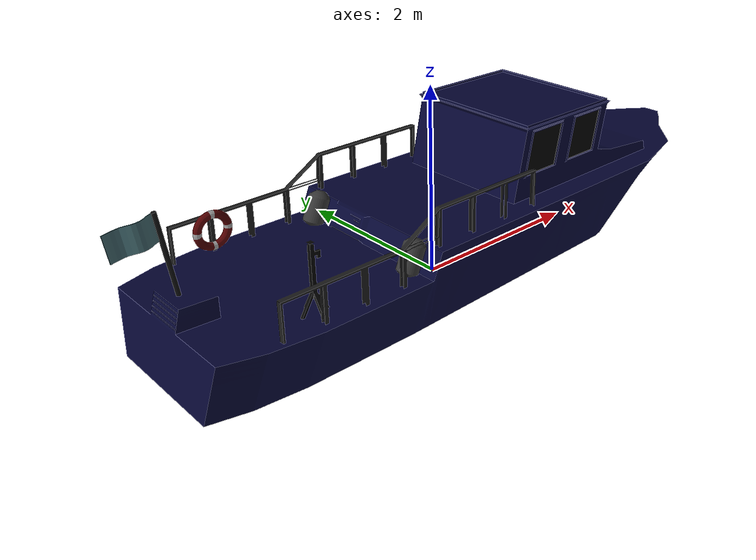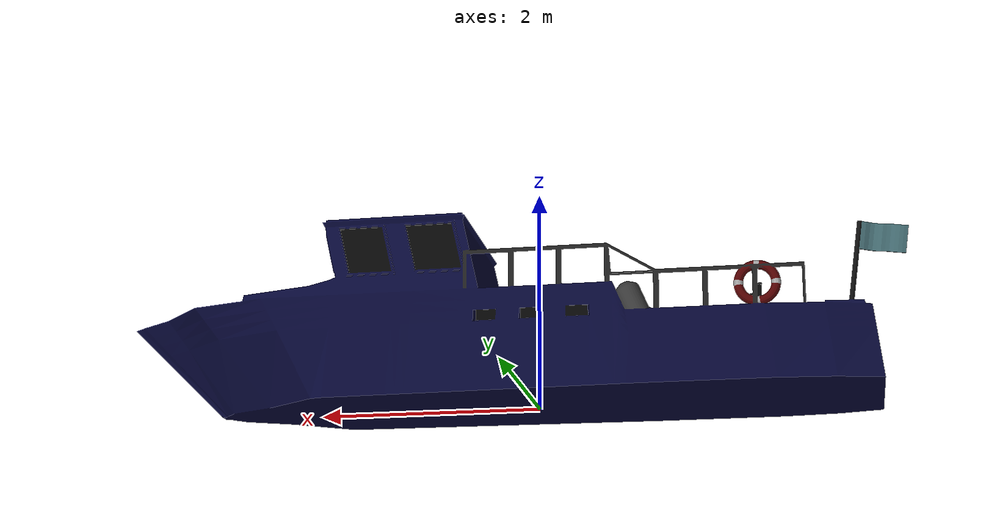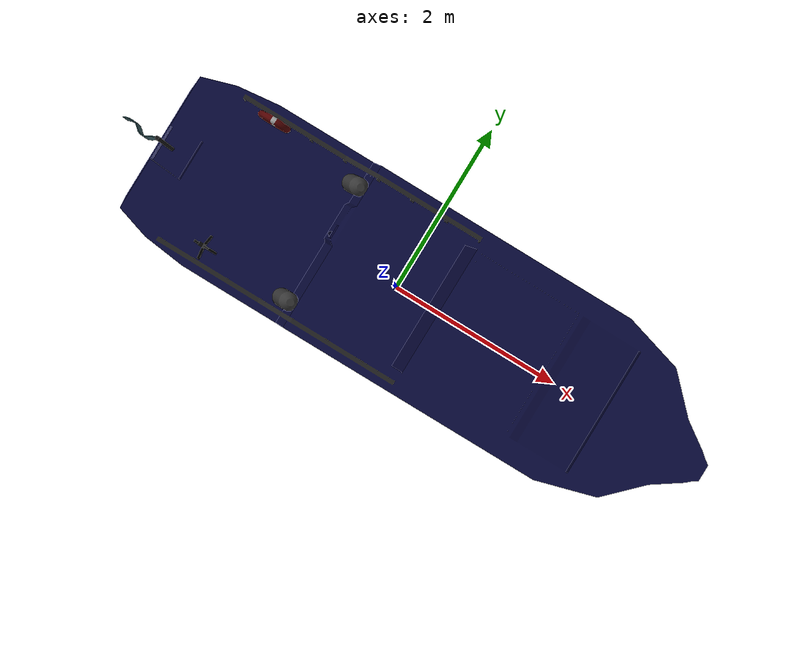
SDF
<?xml version="1.0"?>
<sdf version="1.5">
  <model name="aquabot_blue_boat">
    <static>true</static>
    <link name="link">
      <collision name="collision">
        <pose>0 0 0 0 0 0</pose>
        <geometry>
          <mesh>
            <uri>mesh/blue_boat.dae</uri>
          </mesh>
        </geometry>
      </collision>
      <visual name="visual">
        <pose>0.0 0.0 0.0 0 0 0 </pose>
        <geometry>
          <mesh>
            <uri>mesh/blue_boat.dae</uri>
          </mesh>
        </geometry>
      </visual>
    </link>
  </model>
</sdf>
